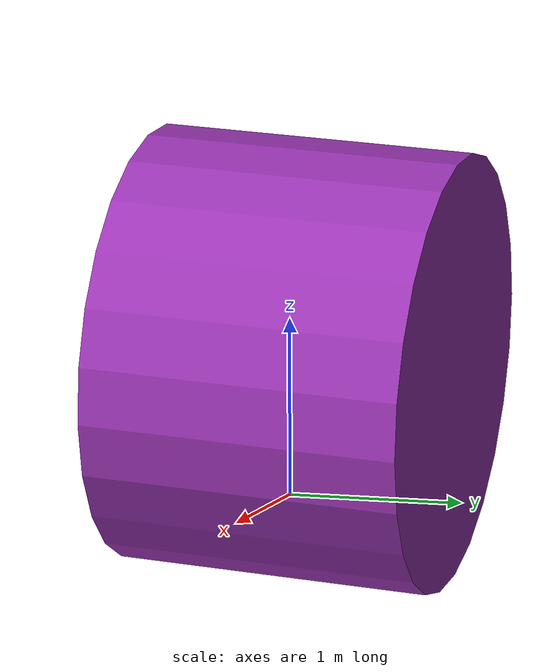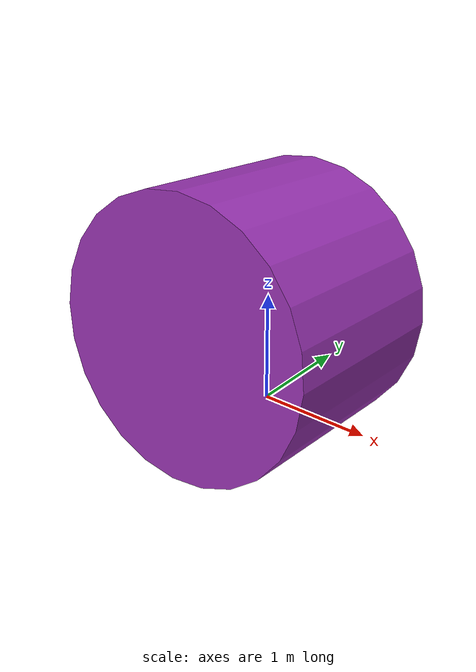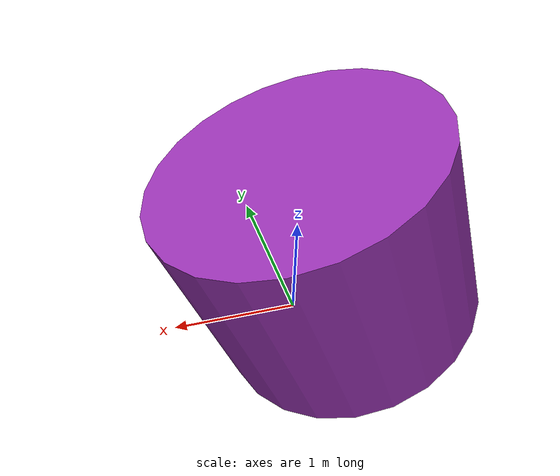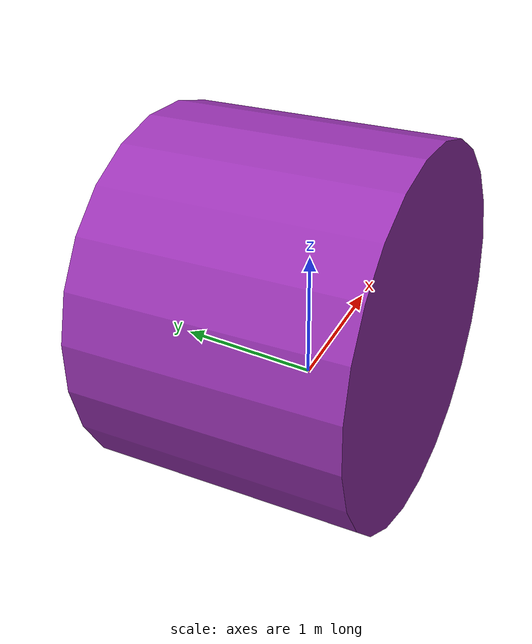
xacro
<?xml version="1.0"?>
<robot xmlns:xacro="http://www.ros.org/wiki/xacro" name="autonomous_robot" >
  <!-- ROBOT PROPERTY -->

  <!-- BASE LINK-->
  <xacro:property name="base_link_radius" value="0.6"/>
  <xacro:property name="base_link_length" value="0.3"/>

  <!-- PAN LINK-->
  <xacro:property name="pan_link_radius" value="0.4"/>
  <xacro:property name="pan_link_length" value="0.1"/>

  <!-- BOTH PILLAR LINK-->
  <xacro:property name="pillar_link_x" value="0.02"/>
  <xacro:property name="pillar_link_y" value="0.4"/>
  <xacro:property name="pillar_link_z" value="1.5"/>

  <!-- BARREL LINK-->
  <xacro:property name="barrel_link_radius" value="1.25"/>
  <xacro:property name="barrel_link_length" value="1.8"/>

  <!-- LINK MASS -->
  <xacro:property name="base_link_mass" value="5.0"/>
  <xacro:property name="pan_link_mass" value="2.0"/>
  <xacro:property name="pillar_link_mass" value="1.5"/>
  <xacro:property name="barrel_link_mass" value="1.0"/>

  <xacro:macro name="inertia_base">
    <inertial>
      <origin xyz="0 0 0" rpy="0 0 0"/>
      <mass value="${base_link_mass}"/>
      <inertia
        ixx="${(1/12.0)*base_link_mass*(3*base_link_radius*base_link_radius + base_link_length*base_link_length)}"
        ixy="0.0" ixz="0.0"
        iyy="${(1/12.0)*base_link_mass*(3*base_link_radius*base_link_radius + base_link_length*base_link_length)}"
        iyz="0.0"
        izz="${0.5*base_link_mass*base_link_radius*base_link_radius}"/>
    </inertial>
  </xacro:macro>

  <xacro:macro name="inertia_pan">
    <inertial>
      <origin xyz="0 0 0" rpy="0 0 0"/>
      <mass value="${pan_link_mass}"/>
      <inertia
        ixx="${(1/12.0)*pan_link_mass*(3*pan_link_radius*pan_link_radius + pan_link_length*pan_link_length)}"
        ixy="0.0" ixz="0.0"
        iyy="${(1/12.0)*pan_link_mass*(3*pan_link_radius*pan_link_radius + pan_link_length*pan_link_length)}"
        iyz="0.0"
        izz="${0.5*pan_link_mass*pan_link_radius*pan_link_radius}"/>
    </inertial>
  </xacro:macro>

  <material name="red">
    <color rgba="0.8 0 0 1"/>
  </material>

  <material name="green">
    <color rgba="0 0.8 0 1"/>
  </material>

  <material name="blue">
    <color rgba="0 0 0.8 1"/>
  </material>

  <!-- BASE ROBOT -->

  <link name="dummy_link">
  </link>
  <joint name="dummy_joint" type="fixed">
    <parent link="dummy_link"/>
    <child link="base_link"/>

  </joint>
  <link name="base_link">
    <visual>
      <geometry>
        <cylinder radius="${base_link_radius}" length="${base_link_length}"/>
      </geometry>
    </visual>
    <collision>
      <geometry>

        <cylinder radius="${base_link_radius}" length="${base_link_length}"/>
      </geometry>
    </collision>

    <xacro:inertia_base />

  </link>

  <joint name="base_to_pan_leg" type="continuous">
    <axis xyz="0 0 1" />
    <parent link="base_link"/>
    <child link="pan_link"/>
    <origin xyz="0 0 ${base_link_length/2}"/>
  </joint>

  <link name="pan_link">
    <visual>
      <geometry>
        <cylinder radius="${pan_link_radius}" length="${pan_link_length}"/>
      </geometry>
      <origin rpy="0 0 0" xyz="0 0 0"/>
    </visual>
    <collision>
      <geometry>
        <cylinder radius="${pan_link_radius}" length="${pan_link_length}"/>
      </geometry>
    </collision>
    <xacro:inertia_pan />
  </link>

  <joint name="pan_to_left_pillar_joint" type="fixed">
    <parent link="pan_link"/>
    <child link="left_pillar_link"/>
    <origin xyz="0.25 0 0.4"/>
  </joint>

  <link name="left_pillar_link">
    <visual>
      <geometry>
        <box size="${pillar_link_x} ${pillar_link_y} ${pillar_link_z}" />
      </geometry>
      <origin rpy="0 0 0" xyz="0 0 0"/>
    </visual>
    <collision>
      <geometry>
        <box size="${pillar_link_x} ${pillar_link_y} ${pillar_link_z}" />
      </geometry>
      <origin xyz="0.0 0.0 0.0" rpy="0.0 0.0 0.0"/>
    </collision>
  </link>

  <joint name="pan_to_right_pillar_joint" type="fixed">
    <parent link="pan_link"/>
    <child link="right_pillar_link"/>
    <origin xyz="-0.25 0 0.4"/>
  </joint>

  <link name="right_pillar_link">
    <visual>
      <geometry>
        <box size="${pillar_link_x} ${pillar_link_y} ${pillar_link_z}" />
      </geometry>
      <origin rpy="0 0 0" xyz="0 0 0"/>
    </visual>
     <collision>
      <geometry>
        <box size="${pillar_link_x} ${pillar_link_y} ${pillar_link_z}" />
      </geometry>
      <origin xyz="0.0 0.0 0.0" rpy="0.0 0.0 0.0"/>
    </collision>
  </link>

  <joint name="right_pillar_to_barrel_joint" type="revolute">
    <parent link="right_pillar_link"/>
    <child link="barrel_link"/>
    <origin xyz="0 0 0.2"/>
    <axis xyz="1 0 0" />
    <limit lower="1" upper="2" effort="10.0" velocity="1.0"/>
  </joint>

  <link name="barrel_link">
    <visual>
      <geometry>
        <cylinder radius="${barrel_link_radius}" length="${barrel_link_length}"/>
      </geometry>

      <origin rpy="0 0 0" xyz="0 0 0"/>
    </visual>
    <collision>
      <geometry>
        <cylinder radius="${barrel_link_radius}" length="${barrel_link_length}"/>

      </geometry>
      <origin rpy="0 0 0" xyz="0 0 0"/>
    </collision>
  </link>

<!-- gazebo -->

<gazebo reference="base_link">
  <material>Gazebo/Yellow</material>
</gazebo>
<gazebo reference="pan_link">
  <material>Gazebo/Green</material>
</gazebo>
<gazebo reference="barrel_link">
  <material>Gazebo/Purple</material>
</gazebo>

</robot>
